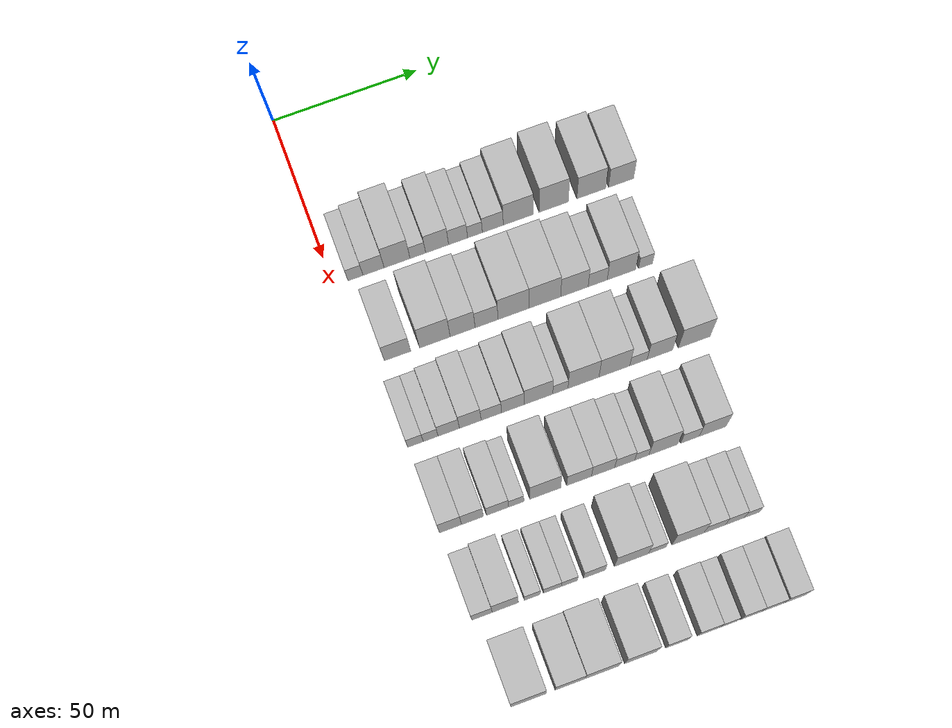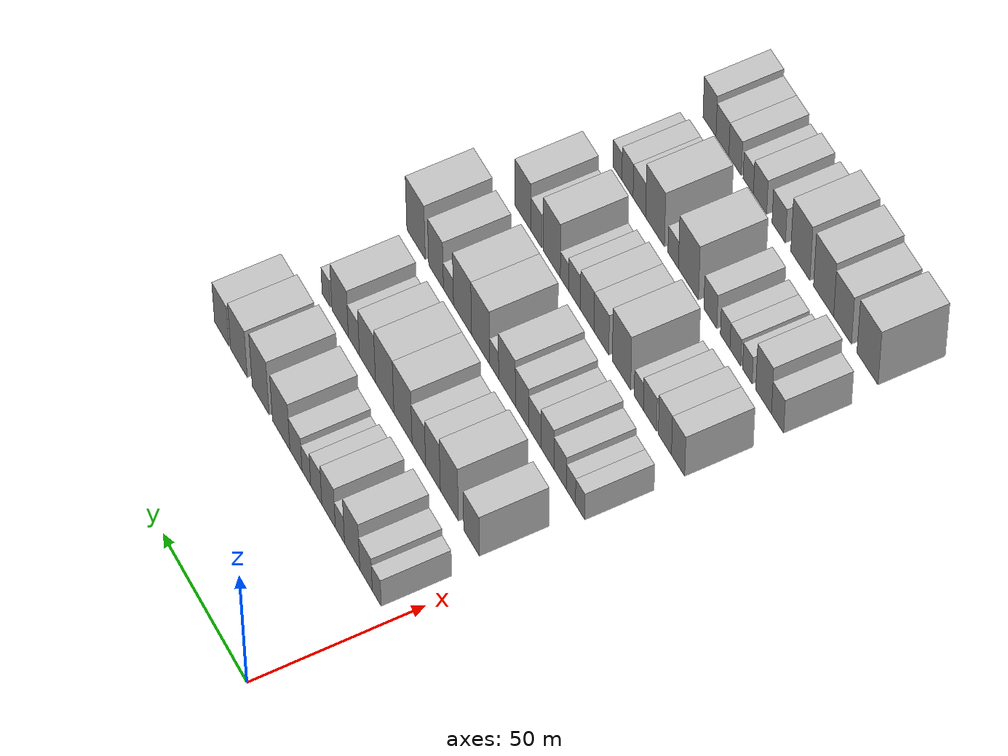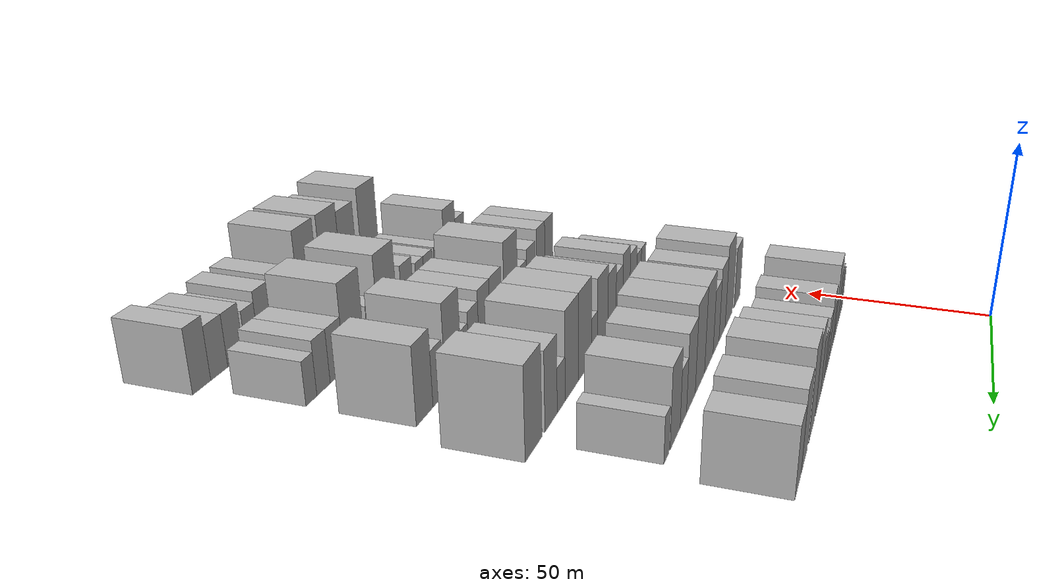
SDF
<sdf version="1.6">
 <world name="default">
  <model name="building_59">
   <static>1</static>
   <pose>50.0000 7.6105 0 0.000000 0.000000 0.000000</pose>
   <link name="link">
    <pose>0 0 6.00 0 0 0</pose>
    <collision name="collision"><geometry><box><size>20.0000 5.1337 12.0000</size></box></geometry></collision>
    <visual name="visual">
     <cast_shadows>0</cast_shadows>
     <geometry><box><size>20.0000 5.1337 12.0000</size></box></geometry>
     <material>
      <script>
       <uri>model://HANNAS_wall/materials/scripts</uri>
       <uri>model://HANNAS_wall/materials/textures</uri>
       <name>vrc/HANNAS_wall</name>
      </script>
     </material>
    </visual>
   </link>
  </model>
  <model name="building_60">
   <static>1</static>
   <pose>50.0000 13.7823 0 0.000000 0.000000 0.000000</pose>
   <link name="link">
    <pose>0 0 7.50 0 0 0</pose>
    <collision name="collision"><geometry><box><size>20.0000 7.2100 15.0000</size></box></geometry></collision>
    <visual name="visual">
     <cast_shadows>0</cast_shadows>
     <geometry><box><size>20.0000 7.2100 15.0000</size></box></geometry>
     <material>
      <script>
       <uri>model://HANNAS_wall/materials/scripts</uri>
       <uri>model://HANNAS_wall/materials/textures</uri>
       <name>vrc/HANNAS_wall</name>
      </script>
     </material>
    </visual>
   </link>
  </model>
  <model name="building_61">
   <static>1</static>
   <pose>50.0000 21.8261 0 0.000000 0.000000 0.000000</pose>
   <link name="link">
    <pose>0 0 10.50 0 0 0</pose>
    <collision name="collision"><geometry><box><size>20.0000 8.8775 21.0000</size></box></geometry></collision>
    <visual name="visual">
     <cast_shadows>0</cast_shadows>
     <geometry><box><size>20.0000 8.8775 21.0000</size></box></geometry>
     <material>
      <script>
       <uri>model://HANNAS_wall/materials/scripts</uri>
       <uri>model://HANNAS_wall/materials/textures</uri>
       <name>vrc/HANNAS_wall</name>
      </script>
     </material>
    </visual>
   </link>
  </model>
  <model name="building_62">
   <static>1</static>
   <pose>50.0000 28.9476 0 0.000000 0.000000 0.000000</pose>
   <link name="link">
    <pose>0 0 6.00 0 0 0</pose>
    <collision name="collision"><geometry><box><size>20.0000 5.3655 12.0000</size></box></geometry></collision>
    <visual name="visual">
     <cast_shadows>0</cast_shadows>
     <geometry><box><size>20.0000 5.3655 12.0000</size></box></geometry>
     <material>
      <script>
       <uri>model://HANNAS_wall/materials/scripts</uri>
       <uri>model://HANNAS_wall/materials/textures</uri>
       <name>vrc/HANNAS_wall</name>
      </script>
     </material>
    </visual>
   </link>
  </model>
  <model name="building_63">
   <static>1</static>
   <pose>50.0000 35.5802 0 0.000000 0.000000 0.000000</pose>
   <link name="link">
    <pose>0 0 9.00 0 0 0</pose>
    <collision name="collision"><geometry><box><size>20.0000 7.8997 18.0000</size></box></geometry></collision>
    <visual name="visual">
     <cast_shadows>0</cast_shadows>
     <geometry><box><size>20.0000 7.8997 18.0000</size></box></geometry>
     <material>
      <script>
       <uri>model://HANNAS_wall/materials/scripts</uri>
       <uri>model://HANNAS_wall/materials/textures</uri>
       <name>vrc/HANNAS_wall</name>
      </script>
     </material>
    </visual>
   </link>
  </model>
  <model name="building_64">
   <static>1</static>
   <pose>50.0000 42.7928 0 0.000000 0.000000 0.000000</pose>
   <link name="link">
    <pose>0 0 7.50 0 0 0</pose>
    <collision name="collision"><geometry><box><size>20.0000 6.5254 15.0000</size></box></geometry></collision>
    <visual name="visual">
     <cast_shadows>0</cast_shadows>
     <geometry><box><size>20.0000 6.5254 15.0000</size></box></geometry>
     <material>
      <script>
       <uri>model://HANNAS_wall/materials/scripts</uri>
       <uri>model://HANNAS_wall/materials/textures</uri>
       <name>vrc/HANNAS_wall</name>
      </script>
     </material>
    </visual>
   </link>
  </model>
  <model name="building_65">
   <static>1</static>
   <pose>50.0000 48.6099 0 0.000000 0.000000 0.000000</pose>
   <link name="link">
    <pose>0 0 6.00 0 0 0</pose>
    <collision name="collision"><geometry><box><size>20.0000 5.1089 12.0000</size></box></geometry></collision>
    <visual name="visual">
     <cast_shadows>0</cast_shadows>
     <geometry><box><size>20.0000 5.1089 12.0000</size></box></geometry>
     <material>
      <script>
       <uri>model://HANNAS_wall/materials/scripts</uri>
       <uri>model://HANNAS_wall/materials/textures</uri>
       <name>vrc/HANNAS_wall</name>
      </script>
     </material>
    </visual>
   </link>
  </model>
  <model name="building_66">
   <static>1</static>
   <pose>50.0000 54.7780 0 0.000000 0.000000 0.000000</pose>
   <link name="link">
    <pose>0 0 7.50 0 0 0</pose>
    <collision name="collision"><geometry><box><size>20.0000 7.2273 15.0000</size></box></geometry></collision>
    <visual name="visual">
     <cast_shadows>0</cast_shadows>
     <geometry><box><size>20.0000 7.2273 15.0000</size></box></geometry>
     <material>
      <script>
       <uri>model://HANNAS_wall/materials/scripts</uri>
       <uri>model://HANNAS_wall/materials/textures</uri>
       <name>vrc/HANNAS_wall</name>
      </script>
     </material>
    </visual>
   </link>
  </model>
  <model name="building_67">
   <static>1</static>
   <pose>50.0000 63.5923 0 0.000000 0.000000 0.000000</pose>
   <link name="link">
    <pose>0 0 10.50 0 0 0</pose>
    <collision name="collision"><geometry><box><size>20.0000 10.4013 21.0000</size></box></geometry></collision>
    <visual name="visual">
     <cast_shadows>0</cast_shadows>
     <geometry><box><size>20.0000 10.4013 21.0000</size></box></geometry>
     <material>
      <script>
       <uri>model://HANNAS_wall/materials/scripts</uri>
       <uri>model://HANNAS_wall/materials/textures</uri>
       <name>vrc/HANNAS_wall</name>
      </script>
     </material>
    </visual>
   </link>
  </model>
  <model name="building_68">
   <static>1</static>
   <pose>50.0000 75.8604 0 0.000000 0.000000 0.000000</pose>
   <link name="link">
    <pose>0 0 12.00 0 0 0</pose>
    <collision name="collision"><geometry><box><size>20.0000 10.1349 24.0000</size></box></geometry></collision>
    <visual name="visual">
     <cast_shadows>0</cast_shadows>
     <geometry><box><size>20.0000 10.1349 24.0000</size></box></geometry>
     <material>
      <script>
       <uri>model://HANNAS_wall/materials/scripts</uri>
       <uri>model://HANNAS_wall/materials/textures</uri>
       <name>vrc/HANNAS_wall</name>
      </script>
     </material>
    </visual>
   </link>
  </model>
  <model name="building_69">
   <static>1</static>
   <pose>50.0000 88.9442 0 0.000000 0.000000 0.000000</pose>
   <link name="link">
    <pose>0 0 10.50 0 0 0</pose>
    <collision name="collision"><geometry><box><size>20.0000 10.0326 21.0000</size></box></geometry></collision>
    <visual name="visual">
     <cast_shadows>0</cast_shadows>
     <geometry><box><size>20.0000 10.0326 21.0000</size></box></geometry>
     <material>
      <script>
       <uri>model://HANNAS_wall/materials/scripts</uri>
       <uri>model://HANNAS_wall/materials/textures</uri>
       <name>vrc/HANNAS_wall</name>
      </script>
     </material>
    </visual>
   </link>
  </model>
  <model name="building_70">
   <static>1</static>
   <pose>50.0000 99.3393 0 0.000000 0.000000 0.000000</pose>
   <link name="link">
    <pose>0 0 9.00 0 0 0</pose>
    <collision name="collision"><geometry><box><size>20.0000 8.7577 18.0000</size></box></geometry></collision>
    <visual name="visual">
     <cast_shadows>0</cast_shadows>
     <geometry><box><size>20.0000 8.7577 18.0000</size></box></geometry>
     <material>
      <script>
       <uri>model://HANNAS_wall/materials/scripts</uri>
       <uri>model://HANNAS_wall/materials/textures</uri>
       <name>vrc/HANNAS_wall</name>
      </script>
     </material>
    </visual>
   </link>
  </model>
  <model name="building_174">
   <static>1</static>
   <pose>79.0000 11.6642 0 0.000000 0.000000 0.000000</pose>
   <link name="link">
    <pose>0 0 9.00 0 0 0</pose>
    <collision name="collision"><geometry><box><size>20.0000 8.9655 18.0000</size></box></geometry></collision>
    <visual name="visual">
     <cast_shadows>0</cast_shadows>
     <geometry><box><size>20.0000 8.9655 18.0000</size></box></geometry>
     <material>
      <script>
       <uri>model://HANNAS_wall/materials/scripts</uri>
       <uri>model://HANNAS_wall/materials/textures</uri>
       <name>vrc/HANNAS_wall</name>
      </script>
     </material>
    </visual>
   </link>
  </model>
  <model name="building_175">
   <static>1</static>
   <pose>79.0000 24.3520 0 0.000000 0.000000 0.000000</pose>
   <link name="link">
    <pose>0 0 12.00 0 0 0</pose>
    <collision name="collision"><geometry><box><size>20.0000 10.4100 24.0000</size></box></geometry></collision>
    <visual name="visual">
     <cast_shadows>0</cast_shadows>
     <geometry><box><size>20.0000 10.4100 24.0000</size></box></geometry>
     <material>
      <script>
       <uri>model://HANNAS_wall/materials/scripts</uri>
       <uri>model://HANNAS_wall/materials/textures</uri>
       <name>vrc/HANNAS_wall</name>
      </script>
     </material>
    </visual>
   </link>
  </model>
  <model name="building_176">
   <static>1</static>
   <pose>79.0000 33.7996 0 0.000000 0.000000 0.000000</pose>
   <link name="link">
    <pose>0 0 10.50 0 0 0</pose>
    <collision name="collision"><geometry><box><size>20.0000 8.4852 21.0000</size></box></geometry></collision>
    <visual name="visual">
     <cast_shadows>0</cast_shadows>
     <geometry><box><size>20.0000 8.4852 21.0000</size></box></geometry>
     <material>
      <script>
       <uri>model://HANNAS_wall/materials/scripts</uri>
       <uri>model://HANNAS_wall/materials/textures</uri>
       <name>vrc/HANNAS_wall</name>
      </script>
     </material>
    </visual>
   </link>
  </model>
  <model name="building_177">
   <static>1</static>
   <pose>79.0000 41.9660 0 0.000000 0.000000 0.000000</pose>
   <link name="link">
    <pose>0 0 9.00 0 0 0</pose>
    <collision name="collision"><geometry><box><size>20.0000 7.8475 18.0000</size></box></geometry></collision>
    <visual name="visual">
     <cast_shadows>0</cast_shadows>
     <geometry><box><size>20.0000 7.8475 18.0000</size></box></geometry>
     <material>
      <script>
       <uri>model://HANNAS_wall/materials/scripts</uri>
       <uri>model://HANNAS_wall/materials/textures</uri>
       <name>vrc/HANNAS_wall</name>
      </script>
     </material>
    </visual>
   </link>
  </model>
  <model name="building_178">
   <static>1</static>
   <pose>79.0000 51.1782 0 0.000000 0.000000 0.000000</pose>
   <link name="link">
    <pose>0 0 12.00 0 0 0</pose>
    <collision name="collision"><geometry><box><size>20.0000 10.5770 24.0000</size></box></geometry></collision>
    <visual name="visual">
     <cast_shadows>0</cast_shadows>
     <geometry><box><size>20.0000 10.5770 24.0000</size></box></geometry>
     <material>
      <script>
       <uri>model://HANNAS_wall/materials/scripts</uri>
       <uri>model://HANNAS_wall/materials/textures</uri>
       <name>vrc/HANNAS_wall</name>
      </script>
     </material>
    </visual>
   </link>
  </model>
  <model name="building_179">
   <static>1</static>
   <pose>79.0000 61.8838 0 0.000000 0.000000 0.000000</pose>
   <link name="link">
    <pose>0 0 12.00 0 0 0</pose>
    <collision name="collision"><geometry><box><size>20.0000 10.8341 24.0000</size></box></geometry></collision>
    <visual name="visual">
     <cast_shadows>0</cast_shadows>
     <geometry><box><size>20.0000 10.8341 24.0000</size></box></geometry>
     <material>
      <script>
       <uri>model://HANNAS_wall/materials/scripts</uri>
       <uri>model://HANNAS_wall/materials/textures</uri>
       <name>vrc/HANNAS_wall</name>
      </script>
     </material>
    </visual>
   </link>
  </model>
  <model name="building_180">
   <static>1</static>
   <pose>79.0000 72.0385 0 0.000000 0.000000 0.000000</pose>
   <link name="link">
    <pose>0 0 10.50 0 0 0</pose>
    <collision name="collision"><geometry><box><size>20.0000 9.4755 21.0000</size></box></geometry></collision>
    <visual name="visual">
     <cast_shadows>0</cast_shadows>
     <geometry><box><size>20.0000 9.4755 21.0000</size></box></geometry>
     <material>
      <script>
       <uri>model://HANNAS_wall/materials/scripts</uri>
       <uri>model://HANNAS_wall/materials/textures</uri>
       <name>vrc/HANNAS_wall</name>
      </script>
     </material>
    </visual>
   </link>
  </model>
  <model name="building_181">
   <static>1</static>
   <pose>79.0000 80.0598 0 0.000000 0.000000 0.000000</pose>
   <link name="link">
    <pose>0 0 7.50 0 0 0</pose>
    <collision name="collision"><geometry><box><size>20.0000 6.5670 15.0000</size></box></geometry></collision>
    <visual name="visual">
     <cast_shadows>0</cast_shadows>
     <geometry><box><size>20.0000 6.5670 15.0000</size></box></geometry>
     <material>
      <script>
       <uri>model://HANNAS_wall/materials/scripts</uri>
       <uri>model://HANNAS_wall/materials/textures</uri>
       <name>vrc/HANNAS_wall</name>
      </script>
     </material>
    </visual>
   </link>
  </model>
  <model name="building_182">
   <static>1</static>
   <pose>79.0000 88.2570 0 0.000000 0.000000 0.000000</pose>
   <link name="link">
    <pose>0 0 10.50 0 0 0</pose>
    <collision name="collision"><geometry><box><size>20.0000 9.8276 21.0000</size></box></geometry></collision>
    <visual name="visual">
     <cast_shadows>0</cast_shadows>
     <geometry><box><size>20.0000 9.8276 21.0000</size></box></geometry>
     <material>
      <script>
       <uri>model://HANNAS_wall/materials/scripts</uri>
       <uri>model://HANNAS_wall/materials/textures</uri>
       <name>vrc/HANNAS_wall</name>
      </script>
     </material>
    </visual>
   </link>
  </model>
  <model name="building_183">
   <static>1</static>
   <pose>79.0000 96.5903 0 0.000000 0.000000 0.000000</pose>
   <link name="link">
    <pose>0 0 6.00 0 0 0</pose>
    <collision name="collision"><geometry><box><size>20.0000 4.8390 12.0000</size></box></geometry></collision>
    <visual name="visual">
     <cast_shadows>0</cast_shadows>
     <geometry><box><size>20.0000 4.8390 12.0000</size></box></geometry>
     <material>
      <script>
       <uri>model://HANNAS_wall/materials/scripts</uri>
       <uri>model://HANNAS_wall/materials/textures</uri>
       <name>vrc/HANNAS_wall</name>
      </script>
     </material>
    </visual>
   </link>
  </model>
  <model name="building_283">
   <static>1</static>
   <pose>108.0000 7.3427 0 0.000000 0.000000 0.000000</pose>
   <link name="link">
    <pose>0 0 6.00 0 0 0</pose>
    <collision name="collision"><geometry><box><size>20.0000 5.2348 12.0000</size></box></geometry></collision>
    <visual name="visual">
     <cast_shadows>0</cast_shadows>
     <geometry><box><size>20.0000 5.2348 12.0000</size></box></geometry>
     <material>
      <script>
       <uri>model://HANNAS_wall/materials/scripts</uri>
       <uri>model://HANNAS_wall/materials/textures</uri>
       <name>vrc/HANNAS_wall</name>
      </script>
     </material>
    </visual>
   </link>
  </model>
  <model name="building_284">
   <static>1</static>
   <pose>108.0000 12.4547 0 0.000000 0.000000 0.000000</pose>
   <link name="link">
    <pose>0 0 6.00 0 0 0</pose>
    <collision name="collision"><geometry><box><size>20.0000 4.9892 12.0000</size></box></geometry></collision>
    <visual name="visual">
     <cast_shadows>0</cast_shadows>
     <geometry><box><size>20.0000 4.9892 12.0000</size></box></geometry>
     <material>
      <script>
       <uri>model://HANNAS_wall/materials/scripts</uri>
       <uri>model://HANNAS_wall/materials/textures</uri>
       <name>vrc/HANNAS_wall</name>
      </script>
     </material>
    </visual>
   </link>
  </model>
  <model name="building_285">
   <static>1</static>
   <pose>108.0000 18.5418 0 0.000000 0.000000 0.000000</pose>
   <link name="link">
    <pose>0 0 7.50 0 0 0</pose>
    <collision name="collision"><geometry><box><size>20.0000 7.1850 15.0000</size></box></geometry></collision>
    <visual name="visual">
     <cast_shadows>0</cast_shadows>
     <geometry><box><size>20.0000 7.1850 15.0000</size></box></geometry>
     <material>
      <script>
       <uri>model://HANNAS_wall/materials/scripts</uri>
       <uri>model://HANNAS_wall/materials/textures</uri>
       <name>vrc/HANNAS_wall</name>
      </script>
     </material>
    </visual>
   </link>
  </model>
  <model name="building_286">
   <static>1</static>
   <pose>108.0000 25.7899 0 0.000000 0.000000 0.000000</pose>
   <link name="link">
    <pose>0 0 9.00 0 0 0</pose>
    <collision name="collision"><geometry><box><size>20.0000 7.3112 18.0000</size></box></geometry></collision>
    <visual name="visual">
     <cast_shadows>0</cast_shadows>
     <geometry><box><size>20.0000 7.3112 18.0000</size></box></geometry>
     <material>
      <script>
       <uri>model://HANNAS_wall/materials/scripts</uri>
       <uri>model://HANNAS_wall/materials/textures</uri>
       <name>vrc/HANNAS_wall</name>
      </script>
     </material>
    </visual>
   </link>
  </model>
  <model name="building_287">
   <static>1</static>
   <pose>108.0000 32.8909 0 0.000000 0.000000 0.000000</pose>
   <link name="link">
    <pose>0 0 7.50 0 0 0</pose>
    <collision name="collision"><geometry><box><size>20.0000 6.8907 15.0000</size></box></geometry></collision>
    <visual name="visual">
     <cast_shadows>0</cast_shadows>
     <geometry><box><size>20.0000 6.8907 15.0000</size></box></geometry>
     <material>
      <script>
       <uri>model://HANNAS_wall/materials/scripts</uri>
       <uri>model://HANNAS_wall/materials/textures</uri>
       <name>vrc/HANNAS_wall</name>
      </script>
     </material>
    </visual>
   </link>
  </model>
  <model name="building_288">
   <static>1</static>
   <pose>108.0000 40.1760 0 0.000000 0.000000 0.000000</pose>
   <link name="link">
    <pose>0 0 9.00 0 0 0</pose>
    <collision name="collision"><geometry><box><size>20.0000 7.6796 18.0000</size></box></geometry></collision>
    <visual name="visual">
     <cast_shadows>0</cast_shadows>
     <geometry><box><size>20.0000 7.6796 18.0000</size></box></geometry>
     <material>
      <script>
       <uri>model://HANNAS_wall/materials/scripts</uri>
       <uri>model://HANNAS_wall/materials/textures</uri>
       <name>vrc/HANNAS_wall</name>
      </script>
     </material>
    </visual>
   </link>
  </model>
  <model name="building_289">
   <static>1</static>
   <pose>108.0000 48.8434 0 0.000000 0.000000 0.000000</pose>
   <link name="link">
    <pose>0 0 10.50 0 0 0</pose>
    <collision name="collision"><geometry><box><size>20.0000 9.6552 21.0000</size></box></geometry></collision>
    <visual name="visual">
     <cast_shadows>0</cast_shadows>
     <geometry><box><size>20.0000 9.6552 21.0000</size></box></geometry>
     <material>
      <script>
       <uri>model://HANNAS_wall/materials/scripts</uri>
       <uri>model://HANNAS_wall/materials/textures</uri>
       <name>vrc/HANNAS_wall</name>
      </script>
     </material>
    </visual>
   </link>
  </model>
  <model name="building_290">
   <static>1</static>
   <pose>108.0000 56.2556 0 0.000000 0.000000 0.000000</pose>
   <link name="link">
    <pose>0 0 6.00 0 0 0</pose>
    <collision name="collision"><geometry><box><size>20.0000 5.1693 12.0000</size></box></geometry></collision>
    <visual name="visual">
     <cast_shadows>0</cast_shadows>
     <geometry><box><size>20.0000 5.1693 12.0000</size></box></geometry>
     <material>
      <script>
       <uri>model://HANNAS_wall/materials/scripts</uri>
       <uri>model://HANNAS_wall/materials/textures</uri>
       <name>vrc/HANNAS_wall</name>
      </script>
     </material>
    </visual>
   </link>
  </model>
  <model name="building_291">
   <static>1</static>
   <pose>108.0000 64.1096 0 0.000000 0.000000 0.000000</pose>
   <link name="link">
    <pose>0 0 12.00 0 0 0</pose>
    <collision name="collision"><geometry><box><size>20.0000 10.5387 24.0000</size></box></geometry></collision>
    <visual name="visual">
     <cast_shadows>0</cast_shadows>
     <geometry><box><size>20.0000 10.5387 24.0000</size></box></geometry>
     <material>
      <script>
       <uri>model://HANNAS_wall/materials/scripts</uri>
       <uri>model://HANNAS_wall/materials/textures</uri>
       <name>vrc/HANNAS_wall</name>
      </script>
     </material>
    </visual>
   </link>
  </model>
  <model name="building_292">
   <static>1</static>
   <pose>108.0000 74.6558 0 0.000000 0.000000 0.000000</pose>
   <link name="link">
    <pose>0 0 12.00 0 0 0</pose>
    <collision name="collision"><geometry><box><size>20.0000 10.5537 24.0000</size></box></geometry></collision>
    <visual name="visual">
     <cast_shadows>0</cast_shadows>
     <geometry><box><size>20.0000 10.5537 24.0000</size></box></geometry>
     <material>
      <script>
       <uri>model://HANNAS_wall/materials/scripts</uri>
       <uri>model://HANNAS_wall/materials/textures</uri>
       <name>vrc/HANNAS_wall</name>
      </script>
     </material>
    </visual>
   </link>
  </model>
  <model name="building_293">
   <static>1</static>
   <pose>108.0000 82.8877 0 0.000000 0.000000 0.000000</pose>
   <link name="link">
    <pose>0 0 6.00 0 0 0</pose>
    <collision name="collision"><geometry><box><size>20.0000 5.9101 12.0000</size></box></geometry></collision>
    <visual name="visual">
     <cast_shadows>0</cast_shadows>
     <geometry><box><size>20.0000 5.9101 12.0000</size></box></geometry>
     <material>
      <script>
       <uri>model://HANNAS_wall/materials/scripts</uri>
       <uri>model://HANNAS_wall/materials/textures</uri>
       <name>vrc/HANNAS_wall</name>
      </script>
     </material>
    </visual>
   </link>
  </model>
  <model name="building_294">
   <static>1</static>
   <pose>108.0000 90.1910 0 0.000000 0.000000 0.000000</pose>
   <link name="link">
    <pose>0 0 10.50 0 0 0</pose>
    <collision name="collision"><geometry><box><size>20.0000 8.6965 21.0000</size></box></geometry></collision>
    <visual name="visual">
     <cast_shadows>0</cast_shadows>
     <geometry><box><size>20.0000 8.6965 21.0000</size></box></geometry>
     <material>
      <script>
       <uri>model://HANNAS_wall/materials/scripts</uri>
       <uri>model://HANNAS_wall/materials/textures</uri>
       <name>vrc/HANNAS_wall</name>
      </script>
     </material>
    </visual>
   </link>
  </model>
  <model name="building_295">
   <static>1</static>
   <pose>108.0000 102.0051 0 0.000000 0.000000 0.000000</pose>
   <link name="link">
    <pose>0 0 12.00 0 0 0</pose>
    <collision name="collision"><geometry><box><size>20.0000 10.9318 24.0000</size></box></geometry></collision>
    <visual name="visual">
     <cast_shadows>0</cast_shadows>
     <geometry><box><size>20.0000 10.9318 24.0000</size></box></geometry>
     <material>
      <script>
       <uri>model://HANNAS_wall/materials/scripts</uri>
       <uri>model://HANNAS_wall/materials/textures</uri>
       <name>vrc/HANNAS_wall</name>
      </script>
     </material>
    </visual>
   </link>
  </model>
  <model name="building_405">
   <static>1</static>
   <pose>137.0000 8.6143 0 0.000000 0.000000 0.000000</pose>
   <link name="link">
    <pose>0 0 9.00 0 0 0</pose>
    <collision name="collision"><geometry><box><size>20.0000 7.3286 18.0000</size></box></geometry></collision>
    <visual name="visual">
     <cast_shadows>0</cast_shadows>
     <geometry><box><size>20.0000 7.3286 18.0000</size></box></geometry>
     <material>
      <script>
       <uri>model://HANNAS_wall/materials/scripts</uri>
       <uri>model://HANNAS_wall/materials/textures</uri>
       <name>vrc/HANNAS_wall</name>
      </script>
     </material>
    </visual>
   </link>
  </model>
  <model name="building_406">
   <static>1</static>
   <pose>137.0000 15.9337 0 0.000000 0.000000 0.000000</pose>
   <link name="link">
    <pose>0 0 9.00 0 0 0</pose>
    <collision name="collision"><geometry><box><size>20.0000 7.3101 18.0000</size></box></geometry></collision>
    <visual name="visual">
     <cast_shadows>0</cast_shadows>
     <geometry><box><size>20.0000 7.3101 18.0000</size></box></geometry>
     <material>
      <script>
       <uri>model://HANNAS_wall/materials/scripts</uri>
       <uri>model://HANNAS_wall/materials/textures</uri>
       <name>vrc/HANNAS_wall</name>
      </script>
     </material>
    </visual>
   </link>
  </model>
  <model name="building_407">
   <static>1</static>
   <pose>137.0000 24.2620 0 0.000000 0.000000 0.000000</pose>
   <link name="link">
    <pose>0 0 7.50 0 0 0</pose>
    <collision name="collision"><geometry><box><size>20.0000 7.3464 15.0000</size></box></geometry></collision>
    <visual name="visual">
     <cast_shadows>0</cast_shadows>
     <geometry><box><size>20.0000 7.3464 15.0000</size></box></geometry>
     <material>
      <script>
       <uri>model://HANNAS_wall/materials/scripts</uri>
       <uri>model://HANNAS_wall/materials/textures</uri>
       <name>vrc/HANNAS_wall</name>
      </script>
     </material>
    </visual>
   </link>
  </model>
  <model name="building_408">
   <static>1</static>
   <pose>137.0000 30.5017 0 0.000000 0.000000 0.000000</pose>
   <link name="link">
    <pose>0 0 6.00 0 0 0</pose>
    <collision name="collision"><geometry><box><size>20.0000 5.1330 12.0000</size></box></geometry></collision>
    <visual name="visual">
     <cast_shadows>0</cast_shadows>
     <geometry><box><size>20.0000 5.1330 12.0000</size></box></geometry>
     <material>
      <script>
       <uri>model://HANNAS_wall/materials/scripts</uri>
       <uri>model://HANNAS_wall/materials/textures</uri>
       <name>vrc/HANNAS_wall</name>
      </script>
     </material>
    </visual>
   </link>
  </model>
  <model name="building_409">
   <static>1</static>
   <pose>137.0000 40.2317 0 0.000000 0.000000 0.000000</pose>
   <link name="link">
    <pose>0 0 12.00 0 0 0</pose>
    <collision name="collision"><geometry><box><size>20.0000 10.3271 24.0000</size></box></geometry></collision>
    <visual name="visual">
     <cast_shadows>0</cast_shadows>
     <geometry><box><size>20.0000 10.3271 24.0000</size></box></geometry>
     <material>
      <script>
       <uri>model://HANNAS_wall/materials/scripts</uri>
       <uri>model://HANNAS_wall/materials/textures</uri>
       <name>vrc/HANNAS_wall</name>
      </script>
     </material>
    </visual>
   </link>
  </model>
  <model name="building_410">
   <static>1</static>
   <pose>137.0000 51.5650 0 0.000000 0.000000 0.000000</pose>
   <link name="link">
    <pose>0 0 9.00 0 0 0</pose>
    <collision name="collision"><geometry><box><size>20.0000 8.3395 18.0000</size></box></geometry></collision>
    <visual name="visual">
     <cast_shadows>0</cast_shadows>
     <geometry><box><size>20.0000 8.3395 18.0000</size></box></geometry>
     <material>
      <script>
       <uri>model://HANNAS_wall/materials/scripts</uri>
       <uri>model://HANNAS_wall/materials/textures</uri>
       <name>vrc/HANNAS_wall</name>
      </script>
     </material>
    </visual>
   </link>
  </model>
  <model name="building_411">
   <static>1</static>
   <pose>137.0000 59.6387 0 0.000000 0.000000 0.000000</pose>
   <link name="link">
    <pose>0 0 9.00 0 0 0</pose>
    <collision name="collision"><geometry><box><size>20.0000 7.8077 18.0000</size></box></geometry></collision>
    <visual name="visual">
     <cast_shadows>0</cast_shadows>
     <geometry><box><size>20.0000 7.8077 18.0000</size></box></geometry>
     <material>
      <script>
       <uri>model://HANNAS_wall/materials/scripts</uri>
       <uri>model://HANNAS_wall/materials/textures</uri>
       <name>vrc/HANNAS_wall</name>
      </script>
     </material>
    </visual>
   </link>
  </model>
  <model name="building_412">
   <static>1</static>
   <pose>137.0000 66.9301 0 0.000000 0.000000 0.000000</pose>
   <link name="link">
    <pose>0 0 7.50 0 0 0</pose>
    <collision name="collision"><geometry><box><size>20.0000 6.7751 15.0000</size></box></geometry></collision>
    <visual name="visual">
     <cast_shadows>0</cast_shadows>
     <geometry><box><size>20.0000 6.7751 15.0000</size></box></geometry>
     <material>
      <script>
       <uri>model://HANNAS_wall/materials/scripts</uri>
       <uri>model://HANNAS_wall/materials/textures</uri>
       <name>vrc/HANNAS_wall</name>
      </script>
     </material>
    </visual>
   </link>
  </model>
  <model name="building_413">
   <static>1</static>
   <pose>137.0000 72.7200 0 0.000000 0.000000 0.000000</pose>
   <link name="link">
    <pose>0 0 6.00 0 0 0</pose>
    <collision name="collision"><geometry><box><size>20.0000 4.8045 12.0000</size></box></geometry></collision>
    <visual name="visual">
     <cast_shadows>0</cast_shadows>
     <geometry><box><size>20.0000 4.8045 12.0000</size></box></geometry>
     <material>
      <script>
       <uri>model://HANNAS_wall/materials/scripts</uri>
       <uri>model://HANNAS_wall/materials/textures</uri>
       <name>vrc/HANNAS_wall</name>
      </script>
     </material>
    </visual>
   </link>
  </model>
  <model name="building_414">
   <static>1</static>
   <pose>137.0000 80.0026 0 0.000000 0.000000 0.000000</pose>
   <link name="link">
    <pose>0 0 12.00 0 0 0</pose>
    <collision name="collision"><geometry><box><size>20.0000 9.7607 24.0000</size></box></geometry></collision>
    <visual name="visual">
     <cast_shadows>0</cast_shadows>
     <geometry><box><size>20.0000 9.7607 24.0000</size></box></geometry>
     <material>
      <script>
       <uri>model://HANNAS_wall/materials/scripts</uri>
       <uri>model://HANNAS_wall/materials/textures</uri>
       <name>vrc/HANNAS_wall</name>
      </script>
     </material>
    </visual>
   </link>
  </model>
  <model name="building_415">
   <static>1</static>
   <pose>137.0000 89.0311 0 0.000000 0.000000 0.000000</pose>
   <link name="link">
    <pose>0 0 7.50 0 0 0</pose>
    <collision name="collision"><geometry><box><size>20.0000 6.2963 15.0000</size></box></geometry></collision>
    <visual name="visual">
     <cast_shadows>0</cast_shadows>
     <geometry><box><size>20.0000 6.2963 15.0000</size></box></geometry>
     <material>
      <script>
       <uri>model://HANNAS_wall/materials/scripts</uri>
       <uri>model://HANNAS_wall/materials/textures</uri>
       <name>vrc/HANNAS_wall</name>
      </script>
     </material>
    </visual>
   </link>
  </model>
  <model name="building_416">
   <static>1</static>
   <pose>137.0000 96.7606 0 0.000000 0.000000 0.000000</pose>
   <link name="link">
    <pose>0 0 10.50 0 0 0</pose>
    <collision name="collision"><geometry><box><size>20.0000 9.1627 21.0000</size></box></geometry></collision>
    <visual name="visual">
     <cast_shadows>0</cast_shadows>
     <geometry><box><size>20.0000 9.1627 21.0000</size></box></geometry>
     <material>
      <script>
       <uri>model://HANNAS_wall/materials/scripts</uri>
       <uri>model://HANNAS_wall/materials/textures</uri>
       <name>vrc/HANNAS_wall</name>
      </script>
     </material>
    </visual>
   </link>
  </model>
  <model name="building_525">
   <static>1</static>
   <pose>166.0000 8.4515 0 0.000000 0.000000 0.000000</pose>
   <link name="link">
    <pose>0 0 7.50 0 0 0</pose>
    <collision name="collision"><geometry><box><size>20.0000 6.6858 15.0000</size></box></geometry></collision>
    <visual name="visual">
     <cast_shadows>0</cast_shadows>
     <geometry><box><size>20.0000 6.6858 15.0000</size></box></geometry>
     <material>
      <script>
       <uri>model://HANNAS_wall/materials/scripts</uri>
       <uri>model://HANNAS_wall/materials/textures</uri>
       <name>vrc/HANNAS_wall</name>
      </script>
     </material>
    </visual>
   </link>
  </model>
  <model name="building_526">
   <static>1</static>
   <pose>166.0000 16.1118 0 0.000000 0.000000 0.000000</pose>
   <link name="link">
    <pose>0 0 10.50 0 0 0</pose>
    <collision name="collision"><geometry><box><size>20.0000 8.6349 21.0000</size></box></geometry></collision>
    <visual name="visual">
     <cast_shadows>0</cast_shadows>
     <geometry><box><size>20.0000 8.6349 21.0000</size></box></geometry>
     <material>
      <script>
       <uri>model://HANNAS_wall/materials/scripts</uri>
       <uri>model://HANNAS_wall/materials/textures</uri>
       <name>vrc/HANNAS_wall</name>
      </script>
     </material>
    </visual>
   </link>
  </model>
  <model name="building_527">
   <static>1</static>
   <pose>166.0000 25.0696 0 0.000000 0.000000 0.000000</pose>
   <link name="link">
    <pose>0 0 6.00 0 0 0</pose>
    <collision name="collision"><geometry><box><size>20.0000 5.2806 12.0000</size></box></geometry></collision>
    <visual name="visual">
     <cast_shadows>0</cast_shadows>
     <geometry><box><size>20.0000 5.2806 12.0000</size></box></geometry>
     <material>
      <script>
       <uri>model://HANNAS_wall/materials/scripts</uri>
       <uri>model://HANNAS_wall/materials/textures</uri>
       <name>vrc/HANNAS_wall</name>
      </script>
     </material>
    </visual>
   </link>
  </model>
  <model name="building_528">
   <static>1</static>
   <pose>166.0000 31.7061 0 0.000000 0.000000 0.000000</pose>
   <link name="link">
    <pose>0 0 6.00 0 0 0</pose>
    <collision name="collision"><geometry><box><size>20.0000 5.9924 12.0000</size></box></geometry></collision>
    <visual name="visual">
     <cast_shadows>0</cast_shadows>
     <geometry><box><size>20.0000 5.9924 12.0000</size></box></geometry>
     <material>
      <script>
       <uri>model://HANNAS_wall/materials/scripts</uri>
       <uri>model://HANNAS_wall/materials/textures</uri>
       <name>vrc/HANNAS_wall</name>
      </script>
     </material>
    </visual>
   </link>
  </model>
  <model name="building_529">
   <static>1</static>
   <pose>166.0000 37.3581 0 0.000000 0.000000 0.000000</pose>
   <link name="link">
    <pose>0 0 6.00 0 0 0</pose>
    <collision name="collision"><geometry><box><size>20.0000 5.3115 12.0000</size></box></geometry></collision>
    <visual name="visual">
     <cast_shadows>0</cast_shadows>
     <geometry><box><size>20.0000 5.3115 12.0000</size></box></geometry>
     <material>
      <script>
       <uri>model://HANNAS_wall/materials/scripts</uri>
       <uri>model://HANNAS_wall/materials/textures</uri>
       <name>vrc/HANNAS_wall</name>
      </script>
     </material>
    </visual>
   </link>
  </model>
  <model name="building_530">
   <static>1</static>
   <pose>166.0000 45.6551 0 0.000000 0.000000 0.000000</pose>
   <link name="link">
    <pose>0 0 7.50 0 0 0</pose>
    <collision name="collision"><geometry><box><size>20.0000 7.2825 15.0000</size></box></geometry></collision>
    <visual name="visual">
     <cast_shadows>0</cast_shadows>
     <geometry><box><size>20.0000 7.2825 15.0000</size></box></geometry>
     <material>
      <script>
       <uri>model://HANNAS_wall/materials/scripts</uri>
       <uri>model://HANNAS_wall/materials/textures</uri>
       <name>vrc/HANNAS_wall</name>
      </script>
     </material>
    </visual>
   </link>
  </model>
  <model name="building_531">
   <static>1</static>
   <pose>166.0000 57.9558 0 0.000000 0.000000 0.000000</pose>
   <link name="link">
    <pose>0 0 12.00 0 0 0</pose>
    <collision name="collision"><geometry><box><size>20.0000 11.3190 24.0000</size></box></geometry></collision>
    <visual name="visual">
     <cast_shadows>0</cast_shadows>
     <geometry><box><size>20.0000 11.3190 24.0000</size></box></geometry>
     <material>
      <script>
       <uri>model://HANNAS_wall/materials/scripts</uri>
       <uri>model://HANNAS_wall/materials/textures</uri>
       <name>vrc/HANNAS_wall</name>
      </script>
     </material>
    </visual>
   </link>
  </model>
  <model name="building_532">
   <static>1</static>
   <pose>166.0000 66.5718 0 0.000000 0.000000 0.000000</pose>
   <link name="link">
    <pose>0 0 6.00 0 0 0</pose>
    <collision name="collision"><geometry><box><size>20.0000 5.9131 12.0000</size></box></geometry></collision>
    <visual name="visual">
     <cast_shadows>0</cast_shadows>
     <geometry><box><size>20.0000 5.9131 12.0000</size></box></geometry>
     <material>
      <script>
       <uri>model://HANNAS_wall/materials/scripts</uri>
       <uri>model://HANNAS_wall/materials/textures</uri>
       <name>vrc/HANNAS_wall</name>
      </script>
     </material>
    </visual>
   </link>
  </model>
  <model name="building_533">
   <static>1</static>
   <pose>166.0000 76.8997 0 0.000000 0.000000 0.000000</pose>
   <link name="link">
    <pose>0 0 12.00 0 0 0</pose>
    <collision name="collision"><geometry><box><size>20.0000 10.7427 24.0000</size></box></geometry></collision>
    <visual name="visual">
     <cast_shadows>0</cast_shadows>
     <geometry><box><size>20.0000 10.7427 24.0000</size></box></geometry>
     <material>
      <script>
       <uri>model://HANNAS_wall/materials/scripts</uri>
       <uri>model://HANNAS_wall/materials/textures</uri>
       <name>vrc/HANNAS_wall</name>
      </script>
     </material>
    </visual>
   </link>
  </model>
  <model name="building_534">
   <static>1</static>
   <pose>166.0000 85.8560 0 0.000000 0.000000 0.000000</pose>
   <link name="link">
    <pose>0 0 7.50 0 0 0</pose>
    <collision name="collision"><geometry><box><size>20.0000 7.1700 15.0000</size></box></geometry></collision>
    <visual name="visual">
     <cast_shadows>0</cast_shadows>
     <geometry><box><size>20.0000 7.1700 15.0000</size></box></geometry>
     <material>
      <script>
       <uri>model://HANNAS_wall/materials/scripts</uri>
       <uri>model://HANNAS_wall/materials/textures</uri>
       <name>vrc/HANNAS_wall</name>
      </script>
     </material>
    </visual>
   </link>
  </model>
  <model name="building_535">
   <static>1</static>
   <pose>166.0000 92.6518 0 0.000000 0.000000 0.000000</pose>
   <link name="link">
    <pose>0 0 7.50 0 0 0</pose>
    <collision name="collision"><geometry><box><size>20.0000 6.4216 15.0000</size></box></geometry></collision>
    <visual name="visual">
     <cast_shadows>0</cast_shadows>
     <geometry><box><size>20.0000 6.4216 15.0000</size></box></geometry>
     <material>
      <script>
       <uri>model://HANNAS_wall/materials/scripts</uri>
       <uri>model://HANNAS_wall/materials/textures</uri>
       <name>vrc/HANNAS_wall</name>
      </script>
     </material>
    </visual>
   </link>
  </model>
  <model name="building_536">
   <static>1</static>
   <pose>166.0000 98.4157 0 0.000000 0.000000 0.000000</pose>
   <link name="link">
    <pose>0 0 6.00 0 0 0</pose>
    <collision name="collision"><geometry><box><size>20.0000 5.1061 12.0000</size></box></geometry></collision>
    <visual name="visual">
     <cast_shadows>0</cast_shadows>
     <geometry><box><size>20.0000 5.1061 12.0000</size></box></geometry>
     <material>
      <script>
       <uri>model://HANNAS_wall/materials/scripts</uri>
       <uri>model://HANNAS_wall/materials/textures</uri>
       <name>vrc/HANNAS_wall</name>
      </script>
     </material>
    </visual>
   </link>
  </model>
  <model name="building_635">
   <static>1</static>
   <pose>195.0000 12.9452 0 0.000000 0.000000 0.000000</pose>
   <link name="link">
    <pose>0 0 12.00 0 0 0</pose>
    <collision name="collision"><geometry><box><size>20.0000 11.4349 24.0000</size></box></geometry></collision>
    <visual name="visual">
     <cast_shadows>0</cast_shadows>
     <geometry><box><size>20.0000 11.4349 24.0000</size></box></geometry>
     <material>
      <script>
       <uri>model://HANNAS_wall/materials/scripts</uri>
       <uri>model://HANNAS_wall/materials/textures</uri>
       <name>vrc/HANNAS_wall</name>
      </script>
     </material>
    </visual>
   </link>
  </model>
  <model name="building_636">
   <static>1</static>
   <pose>195.0000 26.5458 0 0.000000 0.000000 0.000000</pose>
   <link name="link">
    <pose>0 0 10.50 0 0 0</pose>
    <collision name="collision"><geometry><box><size>20.0000 9.7664 21.0000</size></box></geometry></collision>
    <visual name="visual">
     <cast_shadows>0</cast_shadows>
     <geometry><box><size>20.0000 9.7664 21.0000</size></box></geometry>
     <material>
      <script>
       <uri>model://HANNAS_wall/materials/scripts</uri>
       <uri>model://HANNAS_wall/materials/textures</uri>
       <name>vrc/HANNAS_wall</name>
      </script>
     </material>
    </visual>
   </link>
  </model>
  <model name="building_637">
   <static>1</static>
   <pose>195.0000 36.9499 0 0.000000 0.000000 0.000000</pose>
   <link name="link">
    <pose>0 0 12.00 0 0 0</pose>
    <collision name="collision"><geometry><box><size>20.0000 11.0418 24.0000</size></box></geometry></collision>
    <visual name="visual">
     <cast_shadows>0</cast_shadows>
     <geometry><box><size>20.0000 11.0418 24.0000</size></box></geometry>
     <material>
      <script>
       <uri>model://HANNAS_wall/materials/scripts</uri>
       <uri>model://HANNAS_wall/materials/textures</uri>
       <name>vrc/HANNAS_wall</name>
      </script>
     </material>
    </visual>
   </link>
  </model>
  <model name="building_638">
   <static>1</static>
   <pose>195.0000 49.7717 0 0.000000 0.000000 0.000000</pose>
   <link name="link">
    <pose>0 0 12.00 0 0 0</pose>
    <collision name="collision"><geometry><box><size>20.0000 10.6020 24.0000</size></box></geometry></collision>
    <visual name="visual">
     <cast_shadows>0</cast_shadows>
     <geometry><box><size>20.0000 10.6020 24.0000</size></box></geometry>
     <material>
      <script>
       <uri>model://HANNAS_wall/materials/scripts</uri>
       <uri>model://HANNAS_wall/materials/textures</uri>
       <name>vrc/HANNAS_wall</name>
      </script>
     </material>
    </visual>
   </link>
  </model>
  <model name="building_639">
   <static>1</static>
   <pose>195.0000 61.8018 0 0.000000 0.000000 0.000000</pose>
   <link name="link">
    <pose>0 0 7.50 0 0 0</pose>
    <collision name="collision"><geometry><box><size>20.0000 7.4581 15.0000</size></box></geometry></collision>
    <visual name="visual">
     <cast_shadows>0</cast_shadows>
     <geometry><box><size>20.0000 7.4581 15.0000</size></box></geometry>
     <material>
      <script>
       <uri>model://HANNAS_wall/materials/scripts</uri>
       <uri>model://HANNAS_wall/materials/textures</uri>
       <name>vrc/HANNAS_wall</name>
      </script>
     </material>
    </visual>
   </link>
  </model>
  <model name="building_640">
   <static>1</static>
   <pose>195.0000 72.2707 0 0.000000 0.000000 0.000000</pose>
   <link name="link">
    <pose>0 0 7.50 0 0 0</pose>
    <collision name="collision"><geometry><box><size>20.0000 7.4796 15.0000</size></box></geometry></collision>
    <visual name="visual">
     <cast_shadows>0</cast_shadows>
     <geometry><box><size>20.0000 7.4796 15.0000</size></box></geometry>
     <material>
      <script>
       <uri>model://HANNAS_wall/materials/scripts</uri>
       <uri>model://HANNAS_wall/materials/textures</uri>
       <name>vrc/HANNAS_wall</name>
      </script>
     </material>
    </visual>
   </link>
  </model>
  <model name="building_641">
   <static>1</static>
   <pose>195.0000 78.9099 0 0.000000 0.000000 0.000000</pose>
   <link name="link">
    <pose>0 0 6.00 0 0 0</pose>
    <collision name="collision"><geometry><box><size>20.0000 5.7988 12.0000</size></box></geometry></collision>
    <visual name="visual">
     <cast_shadows>0</cast_shadows>
     <geometry><box><size>20.0000 5.7988 12.0000</size></box></geometry>
     <material>
      <script>
       <uri>model://HANNAS_wall/materials/scripts</uri>
       <uri>model://HANNAS_wall/materials/textures</uri>
       <name>vrc/HANNAS_wall</name>
      </script>
     </material>
    </visual>
   </link>
  </model>
  <model name="building_642">
   <static>1</static>
   <pose>195.0000 86.3437 0 0.000000 0.000000 0.000000</pose>
   <link name="link">
    <pose>0 0 7.50 0 0 0</pose>
    <collision name="collision"><geometry><box><size>20.0000 7.0688 15.0000</size></box></geometry></collision>
    <visual name="visual">
     <cast_shadows>0</cast_shadows>
     <geometry><box><size>20.0000 7.0688 15.0000</size></box></geometry>
     <material>
      <script>
       <uri>model://HANNAS_wall/materials/scripts</uri>
       <uri>model://HANNAS_wall/materials/textures</uri>
       <name>vrc/HANNAS_wall</name>
      </script>
     </material>
    </visual>
   </link>
  </model>
  <model name="building_643">
   <static>1</static>
   <pose>195.0000 93.5208 0 0.000000 0.000000 0.000000</pose>
   <link name="link">
    <pose>0 0 7.50 0 0 0</pose>
    <collision name="collision"><geometry><box><size>20.0000 7.2855 15.0000</size></box></geometry></collision>
    <visual name="visual">
     <cast_shadows>0</cast_shadows>
     <geometry><box><size>20.0000 7.2855 15.0000</size></box></geometry>
     <material>
      <script>
       <uri>model://HANNAS_wall/materials/scripts</uri>
       <uri>model://HANNAS_wall/materials/textures</uri>
       <name>vrc/HANNAS_wall</name>
      </script>
     </material>
    </visual>
   </link>
  </model>
  <model name="building_644">
   <static>1</static>
   <pose>195.0000 100.8714 0 0.000000 0.000000 0.000000</pose>
   <link name="link">
    <pose>0 0 9.00 0 0 0</pose>
    <collision name="collision"><geometry><box><size>20.0000 7.4158 18.0000</size></box></geometry></collision>
    <visual name="visual">
     <cast_shadows>0</cast_shadows>
     <geometry><box><size>20.0000 7.4158 18.0000</size></box></geometry>
     <material>
      <script>
       <uri>model://HANNAS_wall/materials/scripts</uri>
       <uri>model://HANNAS_wall/materials/textures</uri>
       <name>vrc/HANNAS_wall</name>
      </script>
     </material>
    </visual>
   </link>
  </model>
 </world>
</sdf>
